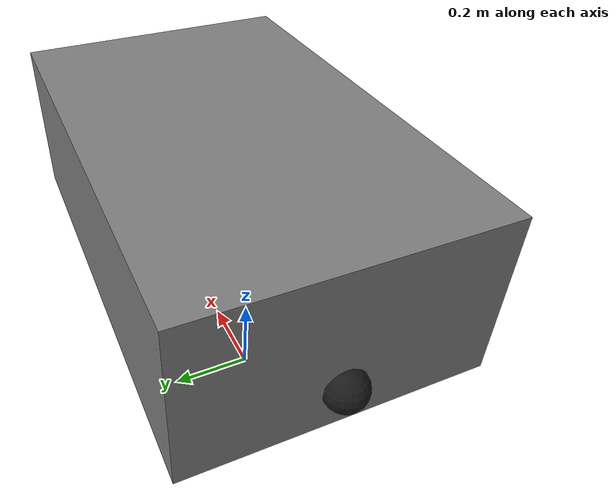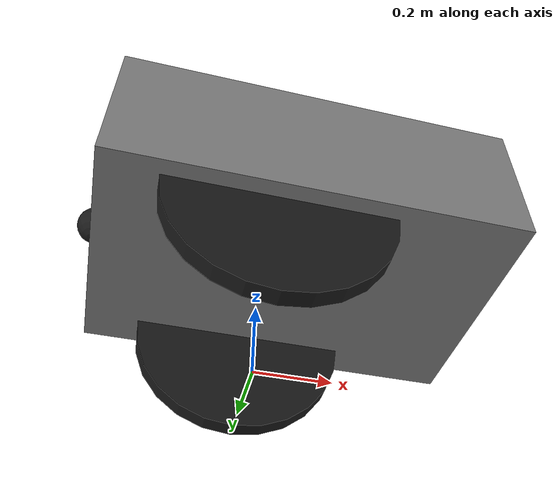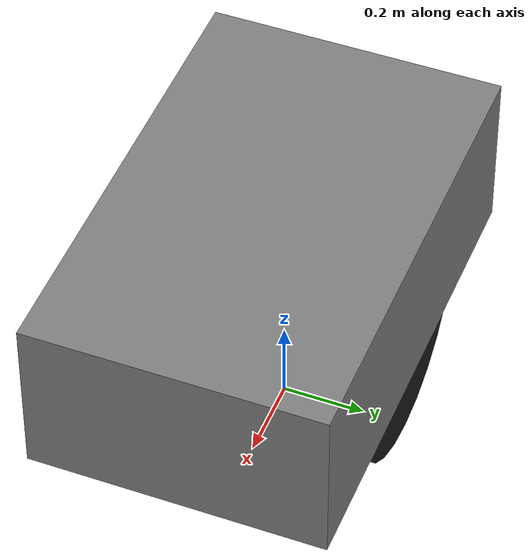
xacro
<?xml version="1.0"?>
<robot name="autonomous_wheelchair" xmlns:xacro="http://www.ros.org/wiki/xacro">

  <!-- ============ 치수 (BUILD_SPEC.md 값 그대로) ============ -->
  <xacro:property name="chassis_length" value="1.10"/>
  <xacro:property name="chassis_width" value="0.70"/>
  <xacro:property name="chassis_height" value="0.40"/>
  <xacro:property name="wheel_radius" value="0.30"/>
  <xacro:property name="wheel_width" value="0.05"/>
  <xacro:property name="wheel_separation" value="0.56"/>
  <xacro:property name="caster_radius" value="0.05"/>

  <!-- 라이다 장착 위치: base_link 기준 -->
  <xacro:property name="lidar_x" value="0.55"/>
  <xacro:property name="lidar_y" value="0.0"/>
  <xacro:property name="lidar_z" value="0.20"/>

  <material name="grey">
    <color rgba="0.5 0.5 0.5 1.0"/>
  </material>
  <material name="black">
    <color rgba="0.1 0.1 0.1 1.0"/>
  </material>
  <material name="red">
    <color rgba="0.8 0.0 0.0 1.0"/>
  </material>

  <!-- ============ base_footprint (지면 투영) ============ -->
  <link name="base_footprint"/>

  <joint name="base_footprint_joint" type="fixed">
    <parent link="base_footprint"/>
    <child link="base_link"/>
    <!-- base_link = 구동륜 축 중심 -> 지면에서 wheel_radius 만큼 위 -->
    <origin xyz="0 0 ${wheel_radius}" rpy="0 0 0"/>
  </joint>

  <!-- ============ base_link (구동륜 축 중심) ============ -->
  <link name="base_link">
    <visual>
      <origin xyz="${chassis_length/2 - 0.45} 0 ${chassis_height/2}" rpy="0 0 0"/>
      <geometry>
        <box size="${chassis_length} ${chassis_width} ${chassis_height}"/>
      </geometry>
      <material name="grey"/>
    </visual>
    <collision>
      <origin xyz="${chassis_length/2 - 0.45} 0 ${chassis_height/2}" rpy="0 0 0"/>
      <geometry>
        <box size="${chassis_length} ${chassis_width} ${chassis_height}"/>
      </geometry>
    </collision>
    <inertial>
      <mass value="60.0"/>
      <origin xyz="${chassis_length/2 - 0.45} 0 ${chassis_height/2}" rpy="0 0 0"/>
      <inertia ixx="4.0" ixy="0.0" ixz="0.0" iyy="5.0" iyz="0.0" izz="6.0"/>
    </inertial>
  </link>

  <!-- ============ 구동륜 (좌/우) ============ -->
  <xacro:macro name="drive_wheel" params="prefix reflect">
    <link name="${prefix}_wheel_link">
      <visual>
        <origin xyz="0 0 0" rpy="${pi/2} 0 0"/>
        <geometry>
          <cylinder radius="${wheel_radius}" length="${wheel_width}"/>
        </geometry>
        <material name="black"/>
      </visual>
      <collision>
        <origin xyz="0 0 0" rpy="${pi/2} 0 0"/>
        <geometry>
          <cylinder radius="${wheel_radius}" length="${wheel_width}"/>
        </geometry>
      </collision>
      <inertial>
        <mass value="2.0"/>
        <inertia ixx="0.01" ixy="0.0" ixz="0.0" iyy="0.01" iyz="0.0" izz="0.01"/>
      </inertial>
    </link>

    <joint name="${prefix}_wheel_joint" type="continuous">
      <parent link="base_link"/>
      <child link="${prefix}_wheel_link"/>
      <origin xyz="0 ${reflect * wheel_separation/2} 0" rpy="0 0 0"/>
      <axis xyz="0 1 0"/>
    </joint>
  </xacro:macro>

  <xacro:drive_wheel prefix="left" reflect="1"/>
  <xacro:drive_wheel prefix="right" reflect="-1"/>

  <!-- ============ 캐스터 (전/후) ============ -->
  <xacro:macro name="caster_wheel" params="prefix x_pos">
    <link name="${prefix}_caster_link">
      <visual>
        <geometry>
          <sphere radius="${caster_radius}"/>
        </geometry>
        <material name="black"/>
      </visual>
      <collision>
        <geometry>
          <sphere radius="${caster_radius}"/>
        </geometry>
      </collision>
      <inertial>
        <mass value="0.5"/>
        <inertia ixx="0.001" ixy="0.0" ixz="0.0" iyy="0.001" iyz="0.0" izz="0.001"/>
      </inertial>
    </link>

    <joint name="${prefix}_caster_joint" type="fixed">
      <parent link="base_link"/>
      <child link="${prefix}_caster_link"/>
      <origin xyz="${x_pos} 0 ${wheel_radius - caster_radius - 0.15}" rpy="0 0 0"/>
    </joint>
  </xacro:macro>

  <xacro:caster_wheel prefix="front" x_pos="0.55"/>
  <xacro:caster_wheel prefix="rear" x_pos="-0.45"/>

  <!-- ============ 라이다 ============ -->
  <link name="laser_frame">
    <visual>
      <geometry>
        <cylinder radius="0.04" length="0.05"/>
      </geometry>
      <material name="red"/>
    </visual>
    <collision>
      <geometry>
        <cylinder radius="0.04" length="0.05"/>
      </geometry>
    </collision>
    <inertial>
      <mass value="0.2"/>
      <inertia ixx="0.0001" ixy="0.0" ixz="0.0" iyy="0.0001" iyz="0.0" izz="0.0001"/>
    </inertial>
  </link>

  <joint name="laser_joint" type="fixed">
    <parent link="base_link"/>
    <child link="laser_frame"/>
    <origin xyz="${lidar_x} ${lidar_y} ${lidar_z}" rpy="0 0 0"/>
  </joint>

</robot>
